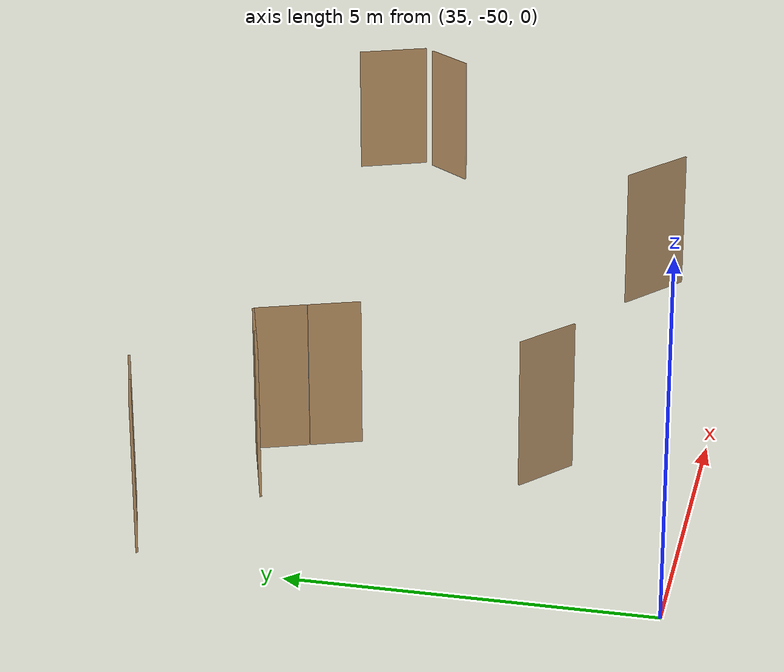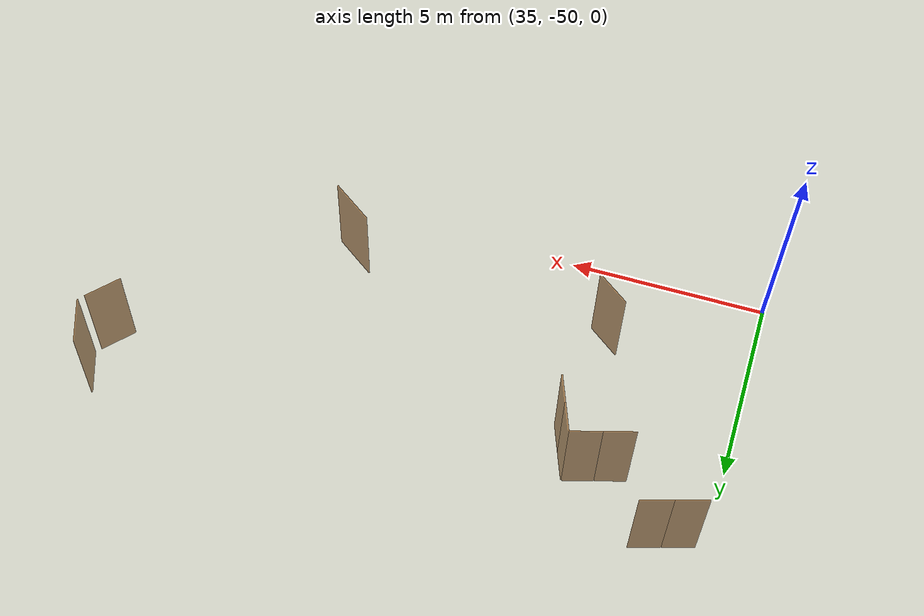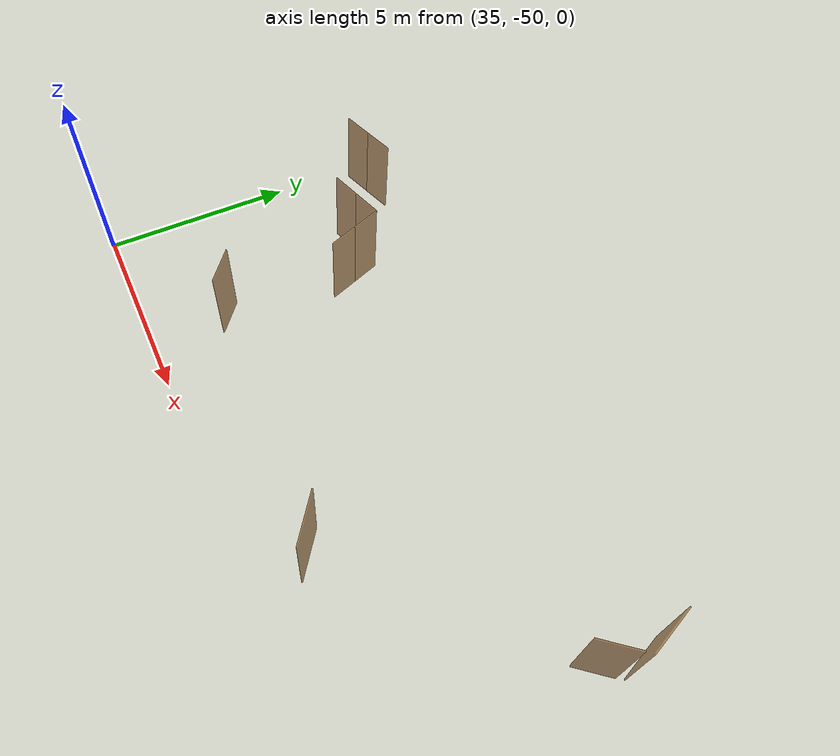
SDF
<sdf version="1.7">
 <world name="world">
  <include><uri>model://sun</uri></include>
  <model name="D7">
   <pose>50.496809938709376 -42.986478251160364 0.0 0 0 -1.1821076421310168</pose>
   <link name="right">
    <pose>0 0 1.11 0 0 0</pose>
    <visual name="right_visual">
     <geometry><box><size>1.2147097628810168 0.03 2.2</size></box></geometry>
     <material><ambient>0.5 0.25 0 0.6</ambient><diffuse>0.5 0.25 0 0.6</diffuse></material>
    </visual>
    <collision name="right_collision">
     <geometry><box><size>1.2147097628810168 0.03 2.2</size></box></geometry>
     <surface><contact><collide_bitmask>0x02</collide_bitmask></contact></surface>
    </collision>
    <inertial>
     <mass>50.0</mass>
     <inertia><ixx>20.17041666666667</ixx><iyy>26.314665866826903</iyy><izz>6.151749200160234</izz></inertia>
    </inertial>
   </link>
   <joint name="right_joint" type="revolute">
    <parent>world</parent>
    <child>right</child>
    <axis><xyz>0 0 1</xyz><limit><lower>0</lower><upper>1.57</upper></limit></axis>
    <pose>0.6123548814405084 0 0 0 0 0</pose>
   </joint>
   <plugin name="door" filename="libdoor.so">
    <v_max_door>0.5</v_max_door>
    <a_max_door>0.3</a_max_door>
    <a_nom_door>0.15</a_nom_door>
    <dx_min_door>0.01</dx_min_door>
    <f_max_door>500.0</f_max_door>
    <door name="D7" type="SwingDoor" left_joint_name="empty_joint" right_joint_name="right_joint"/>
   </plugin>
  </model>
  <model name="D8">
   <pose>50.31558881453607 -44.061107613712 0.0 0 0 0.8936867215143733</pose>
   <link name="right">
    <pose>0 0 1.11 0 0 0</pose>
    <visual name="right_visual">
     <geometry><box><size>0.9542531826486202 0.03 2.2</size></box></geometry>
     <material><ambient>0.5 0.25 0 0.6</ambient><diffuse>0.5 0.25 0 0.6</diffuse></material>
    </visual>
    <collision name="right_collision">
     <geometry><box><size>0.9542531826486202 0.03 2.2</size></box></geometry>
     <surface><contact><collide_bitmask>0x02</collide_bitmask></contact></surface>
    </collision>
    <inertial>
     <mass>50.0</mass>
     <inertia><ixx>20.17041666666667</ixx><iyy>23.96082973581259</iyy><izz>3.7979130691459213</izz></inertia>
    </inertial>
   </link>
   <joint name="right_joint" type="revolute">
    <parent>world</parent>
    <child>right</child>
    <axis><xyz>0 0 1</xyz><limit><lower>0</lower><upper>1.57</upper></limit></axis>
    <pose>0.4821265913243101 0 0 0 0 0</pose>
   </joint>
   <plugin name="door" filename="libdoor.so">
    <v_max_door>0.5</v_max_door>
    <a_max_door>0.3</a_max_door>
    <a_nom_door>0.15</a_nom_door>
    <dx_min_door>0.01</dx_min_door>
    <f_max_door>500.0</f_max_door>
    <door name="D8" type="SwingDoor" left_joint_name="empty_joint" right_joint_name="right_joint"/>
   </plugin>
  </model>
  <model name="D9">
   <pose>45.54562435471131 -48.47684911296154 0.0 0 0 2.500232906125346</pose>
   <link name="right">
    <pose>0 0 1.11 0 0 0</pose>
    <visual name="right_visual">
     <geometry><box><size>1.3029803812608298 0.03 2.2</size></box></geometry>
     <material><ambient>0.5 0.25 0 0.6</ambient><diffuse>0.5 0.25 0 0.6</diffuse></material>
    </visual>
    <collision name="right_collision">
     <geometry><box><size>1.3029803812608298 0.03 2.2</size></box></geometry>
     <surface><contact><collide_bitmask>0x02</collide_bitmask></contact></surface>
    </collision>
    <inertial>
     <mass>50.0</mass>
     <inertia><ixx>20.17041666666667</ixx><iyy>27.240657808127576</iyy><izz>7.077741141460906</izz></inertia>
    </inertial>
   </link>
   <joint name="right_joint" type="revolute">
    <parent>world</parent>
    <child>right</child>
    <axis><xyz>0 0 -1</xyz><limit><lower>0</lower><upper>1.57</upper></limit></axis>
    <pose>0.6564901906304149 0 0 0 0 0</pose>
   </joint>
   <plugin name="door" filename="libdoor.so">
    <v_max_door>0.5</v_max_door>
    <a_max_door>0.3</a_max_door>
    <a_nom_door>0.15</a_nom_door>
    <dx_min_door>0.01</dx_min_door>
    <f_max_door>500.0</f_max_door>
    <door name="D9" type="SwingDoor" left_joint_name="empty_joint" right_joint_name="right_joint"/>
   </plugin>
  </model>
  <model name="D43">
   <pose>38.66358636135589 -47.86799828570301 0.0 0 0 2.4598856471343553</pose>
   <link name="right">
    <pose>0 0 1.11 0 0 0</pose>
    <visual name="right_visual">
     <geometry><box><size>0.9914205766635673 0.03 2.2</size></box></geometry>
     <material><ambient>0.5 0.25 0 0.6</ambient><diffuse>0.5 0.25 0 0.6</diffuse></material>
    </visual>
    <collision name="right_collision">
     <geometry><box><size>0.9914205766635673 0.03 2.2</size></box></geometry>
     <surface><contact><collide_bitmask>0x02</collide_bitmask></contact></surface>
    </collision>
    <inertial>
     <mass>50.0</mass>
     <inertia><ixx>20.17041666666667</ixx><iyy>24.262144832633005</iyy><izz>4.099228165966335</izz></inertia>
    </inertial>
   </link>
   <joint name="right_joint" type="revolute">
    <parent>world</parent>
    <child>right</child>
    <axis><xyz>0 0 -1</xyz><limit><lower>0</lower><upper>1.57</upper></limit></axis>
    <pose>0.5007102883317837 0 0 0 0 0</pose>
   </joint>
   <plugin name="door" filename="libdoor.so">
    <v_max_door>0.5</v_max_door>
    <a_max_door>0.3</a_max_door>
    <a_nom_door>0.15</a_nom_door>
    <dx_min_door>0.01</dx_min_door>
    <f_max_door>500.0</f_max_door>
    <door name="D43" type="SwingDoor" left_joint_name="empty_joint" right_joint_name="right_joint"/>
   </plugin>
  </model>
  <model name="DH1">
   <pose>36.000593808169185 -42.66354526885966 0.0 0 0 -2.823996757295247</pose>
   <link name="right">
    <pose>0.39262100940422234 0 1.11 0 0 0</pose>
    <visual name="right_visual">
     <geometry><box><size>0.7752420188084447 0.03 2.2</size></box></geometry>
     <material><ambient>0.5 0.25 0 0.6</ambient><diffuse>0.5 0.25 0 0.6</diffuse></material>
    </visual>
    <collision name="right_collision">
     <geometry><box><size>0.7752420188084447 0.03 2.2</size></box></geometry>
     <surface><contact><collide_bitmask>0x02</collide_bitmask></contact></surface>
    </collision>
    <inertial>
     <mass>50.0</mass>
     <inertia><ixx>20.17041666666667</ixx><iyy>22.670834115525807</iyy><izz>2.5079174488591374</izz></inertia>
    </inertial>
   </link>
   <joint name="right_joint" type="revolute">
    <parent>world</parent>
    <child>right</child>
    <axis><xyz>0 0 -1</xyz><limit><lower>0</lower><upper>1.57</upper></limit></axis>
    <pose>0.39262100940422234 0 0 0 0 0</pose>
   </joint>
   <link name="left">
    <pose>-0.39262100940422234 0 1.11 0 0 0</pose>
    <visual name="left_visual">
     <geometry><box><size>0.7752420188084447 0.03 2.2</size></box></geometry>
     <material><ambient>0.5 0.25 0 0.6</ambient><diffuse>0.5 0.25 0 0.6</diffuse></material>
    </visual>
    <collision name="left_collision">
     <geometry><box><size>0.7752420188084447 0.03 2.2</size></box></geometry>
     <surface><contact><collide_bitmask>0x02</collide_bitmask></contact></surface>
    </collision>
    <inertial>
     <mass>50.0</mass>
     <inertia><ixx>20.17041666666667</ixx><iyy>22.670834115525807</iyy><izz>2.5079174488591374</izz></inertia>
    </inertial>
   </link>
   <joint name="left_joint" type="revolute">
    <parent>world</parent>
    <child>left</child>
    <axis><xyz>0 0 -1</xyz><limit><lower>-1.57</lower><upper>0</upper></limit></axis>
    <pose>-0.39262100940422234 0 0 0 0 0</pose>
   </joint>
   <plugin name="door" filename="libdoor.so">
    <v_max_door>0.5</v_max_door>
    <a_max_door>0.3</a_max_door>
    <a_nom_door>0.15</a_nom_door>
    <dx_min_door>0.01</dx_min_door>
    <f_max_door>500.0</f_max_door>
    <door name="DH1" type="DoubleSwingDoor" left_joint_name="left_joint" right_joint_name="right_joint"/>
   </plugin>
  </model>
  <model name="DH9">
   <pose>38.910221679240806 -44.363067241009844 0.0 0 0 -1.213524415049301</pose>
   <link name="right">
    <pose>0.38511683397304397 0 1.11 0 0 0</pose>
    <visual name="right_visual">
     <geometry><box><size>0.7602336679460879 0.03 2.2</size></box></geometry>
     <material><ambient>0.5 0.25 0 0.6</ambient><diffuse>0.5 0.25 0 0.6</diffuse></material>
    </visual>
    <collision name="right_collision">
     <geometry><box><size>0.7602336679460879 0.03 2.2</size></box></geometry>
     <surface><contact><collide_bitmask>0x02</collide_bitmask></contact></surface>
    </collision>
    <inertial>
     <mass>50.0</mass>
     <inertia><ixx>20.17041666666667</ixx><iyy>22.57481345782818</iyy><izz>2.4118967911615115</izz></inertia>
    </inertial>
   </link>
   <joint name="right_joint" type="revolute">
    <parent>world</parent>
    <child>right</child>
    <axis><xyz>0 0 -1</xyz><limit><lower>0</lower><upper>1.57</upper></limit></axis>
    <pose>0.38511683397304397 0 0 0 0 0</pose>
   </joint>
   <link name="left">
    <pose>-0.38511683397304397 0 1.11 0 0 0</pose>
    <visual name="left_visual">
     <geometry><box><size>0.7602336679460879 0.03 2.2</size></box></geometry>
     <material><ambient>0.5 0.25 0 0.6</ambient><diffuse>0.5 0.25 0 0.6</diffuse></material>
    </visual>
    <collision name="left_collision">
     <geometry><box><size>0.7602336679460879 0.03 2.2</size></box></geometry>
     <surface><contact><collide_bitmask>0x02</collide_bitmask></contact></surface>
    </collision>
    <inertial>
     <mass>50.0</mass>
     <inertia><ixx>20.17041666666667</ixx><iyy>22.57481345782818</iyy><izz>2.4118967911615115</izz></inertia>
    </inertial>
   </link>
   <joint name="left_joint" type="revolute">
    <parent>world</parent>
    <child>left</child>
    <axis><xyz>0 0 -1</xyz><limit><lower>-1.57</lower><upper>0</upper></limit></axis>
    <pose>-0.38511683397304397 0 0 0 0 0</pose>
   </joint>
   <plugin name="door" filename="libdoor.so">
    <v_max_door>0.5</v_max_door>
    <a_max_door>0.3</a_max_door>
    <a_nom_door>0.15</a_nom_door>
    <dx_min_door>0.01</dx_min_door>
    <f_max_door>500.0</f_max_door>
    <door name="DH9" type="DoubleSwingDoor" left_joint_name="left_joint" right_joint_name="right_joint"/>
   </plugin>
  </model>
  <model name="DH10">
   <pose>37.90134661886027 -43.87353779829458 0.0 0 0 -2.8375123546000935</pose>
   <link name="right">
    <pose>0.3875335624698624 0 1.11 0 0 0</pose>
    <visual name="right_visual">
     <geometry><box><size>0.7650671249397248 0.03 2.2</size></box></geometry>
     <material><ambient>0.5 0.25 0 0.6</ambient><diffuse>0.5 0.25 0 0.6</diffuse></material>
    </visual>
    <collision name="right_collision">
     <geometry><box><size>0.7650671249397248 0.03 2.2</size></box></geometry>
     <surface><contact><collide_bitmask>0x02</collide_bitmask></contact></surface>
    </collision>
    <inertial>
     <mass>50.0</mass>
     <inertia><ixx>20.17041666666667</ixx><iyy>22.60553210693141</iyy><izz>2.4426154402647358</izz></inertia>
    </inertial>
   </link>
   <joint name="right_joint" type="revolute">
    <parent>world</parent>
    <child>right</child>
    <axis><xyz>0 0 -1</xyz><limit><lower>0</lower><upper>1.57</upper></limit></axis>
    <pose>0.3875335624698624 0 0 0 0 0</pose>
   </joint>
   <link name="left">
    <pose>-0.3875335624698624 0 1.11 0 0 0</pose>
    <visual name="left_visual">
     <geometry><box><size>0.7650671249397248 0.03 2.2</size></box></geometry>
     <material><ambient>0.5 0.25 0 0.6</ambient><diffuse>0.5 0.25 0 0.6</diffuse></material>
    </visual>
    <collision name="left_collision">
     <geometry><box><size>0.7650671249397248 0.03 2.2</size></box></geometry>
     <surface><contact><collide_bitmask>0x02</collide_bitmask></contact></surface>
    </collision>
    <inertial>
     <mass>50.0</mass>
     <inertia><ixx>20.17041666666667</ixx><iyy>22.60553210693141</iyy><izz>2.4426154402647358</izz></inertia>
    </inertial>
   </link>
   <joint name="left_joint" type="revolute">
    <parent>world</parent>
    <child>left</child>
    <axis><xyz>0 0 -1</xyz><limit><lower>-1.57</lower><upper>0</upper></limit></axis>
    <pose>-0.3875335624698624 0 0 0 0 0</pose>
   </joint>
   <plugin name="door" filename="libdoor.so">
    <v_max_door>0.5</v_max_door>
    <a_max_door>0.3</a_max_door>
    <a_nom_door>0.15</a_nom_door>
    <dx_min_door>0.01</dx_min_door>
    <f_max_door>500.0</f_max_door>
    <door name="DH10" type="DoubleSwingDoor" left_joint_name="left_joint" right_joint_name="right_joint"/>
   </plugin>
  </model>
 </world>
</sdf>
